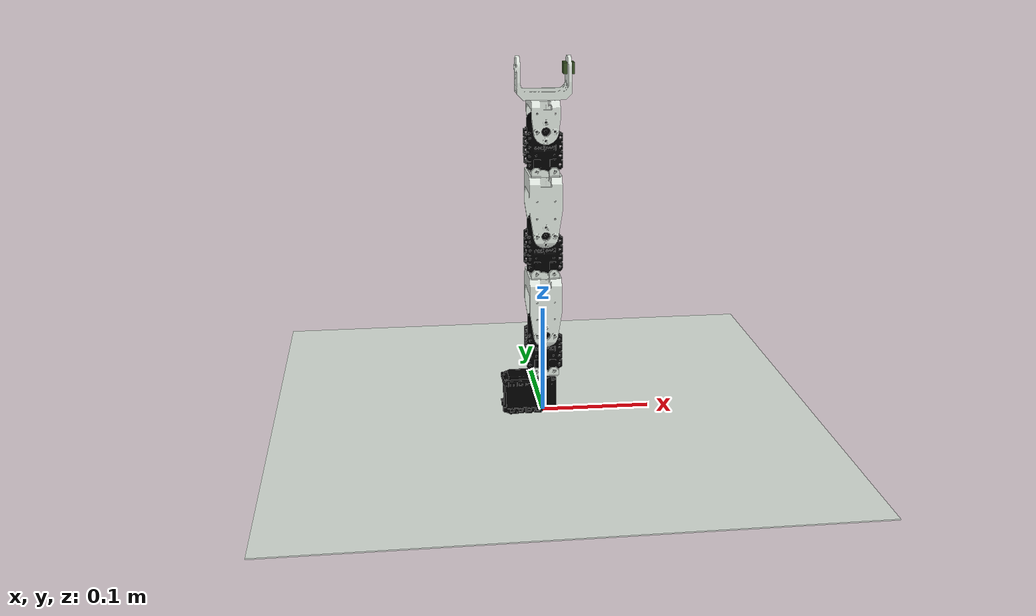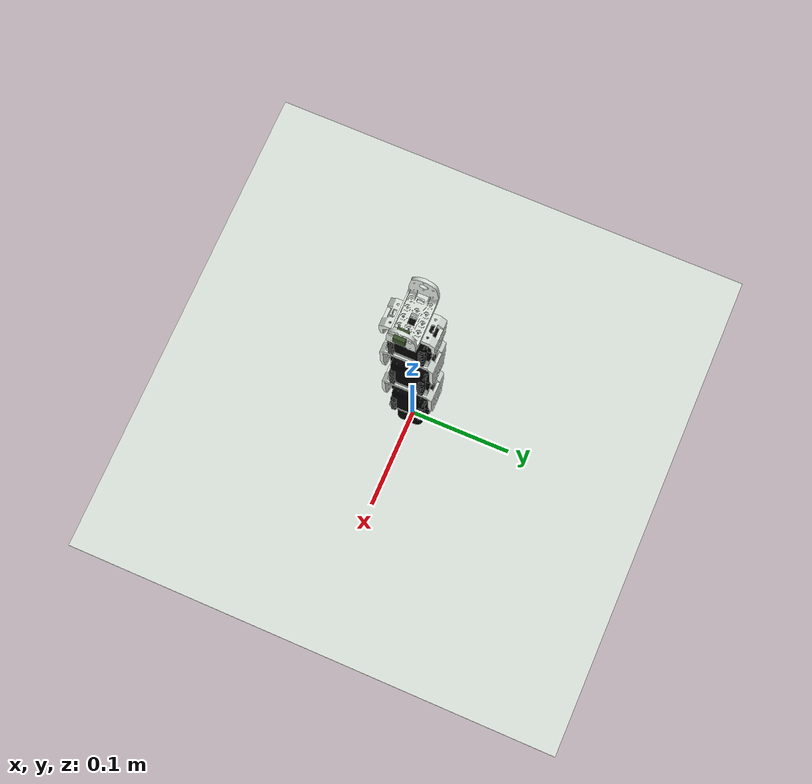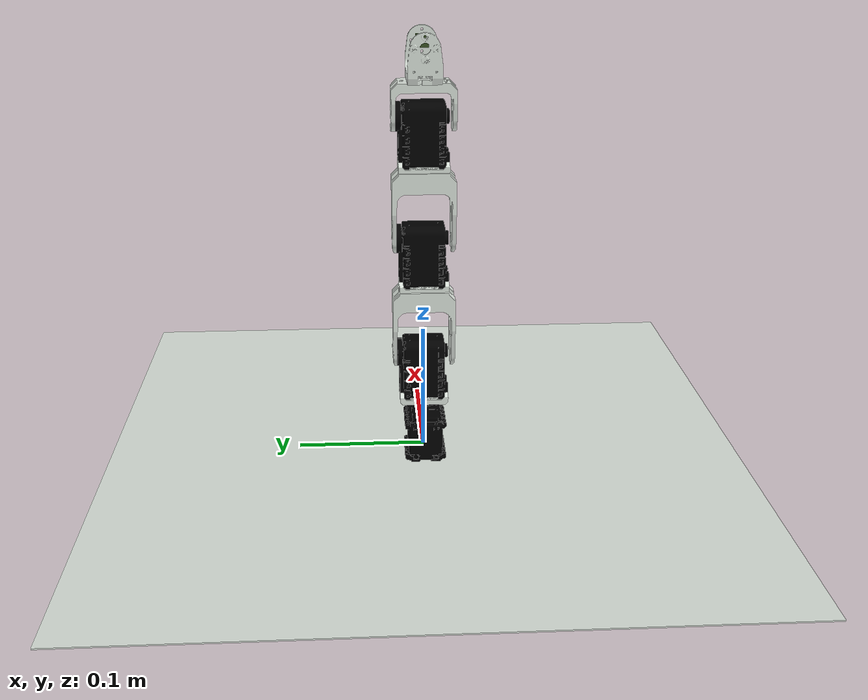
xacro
<?xml version="1.0"?>

<robot name="stackit_robot" xmlns:xacro="http://www.ros.org/wiki/xacro">
  <xacro:include filename="$(find stackit_robot_description)/urdf/arm_hardware.xacro" />

  <material name="white">
    <color rgba="0.87 0.90 0.87 1.0"/>
  </material>
  <material name="black">
    <color rgba="0.0 0.0 0.0 1.0"/>
  </material>
  <material name="green">
    <color rgba="0.22 0.32 0.14 1.0"/>
  </material>

  <link name="base_link"/>
  <link name="arm_base_link">
    <visual>
      <geometry>
        <box size ="0.5 0.5 0.001"/>
      </geometry>
      <material name="white"/>
    </visual>
  </link>
  <joint name="arm_base_joint" type="fixed">
    <origin xyz="0 0 0"/>
    <parent link="base_link"/>
    <child link="arm_base_link"/>
  </joint>

  <!-- shoulder pan joint -->
  <dynamixel_AX12_fixed parent="arm_base_link" name="base_pan_servo">
    <origin xyz="0 0 ${AX12_WIDTH/2}" rpy="0 0 ${-M_PI/2}"/>
  </dynamixel_AX12_fixed>
  <bioloid_F3_revolute parent="base_pan_servo_link" name="base_pan" color="white" vlimit="1.571"  llimit="-1.571" ulimit="1.571">
    <origin xyz="0 0 ${AX12_WIDTH/2+0.002}" rpy="${M_PI/2} 0 ${M_PI/2}" />
  </bioloid_F3_revolute>

  <!-- shoulder lift joint -->
  <dynamixel_AX12_fixed parent="base_pan_link" name="base_lift_servo">
    <origin xyz="0 ${AX12_HEIGHT+F3_HEIGHT} 0" rpy="0 ${M_PI} 0" />
  </dynamixel_AX12_fixed>
  <bioloid_F4_revolute parent="base_lift_servo_link" name="base_lift" color="white" vlimit="1.571" llimit="-2.617" ulimit="2.617">
    <origin xyz="0 0 0" rpy="${-M_PI/2} ${-M_PI/2} 0" />
  </bioloid_F4_revolute>

  <bioloid_F3_fixed parent="base_lift_link" name="arm_shoulder_F3_0" color="white">
    <origin xyz="0 0 ${F4_HEIGHT}" rpy="${M_PI/2} 0 ${-M_PI/2}" />
  </bioloid_F3_fixed>

  <!-- elbow joint -->
  <dynamixel_AX12_fixed parent="arm_shoulder_F3_0_link" name="elbow_flex_servo">
    <origin xyz="0 ${AX12_HEIGHT+F3_HEIGHT} 0" rpy="0 ${M_PI} 0" />
  </dynamixel_AX12_fixed>
  <bioloid_F4_revolute parent="elbow_flex_servo_link" name="elbow_flex" color="white" vlimit="1.571" llimit="0.0" ulimit="2.617">
    <origin xyz="0 0 0" rpy="${-M_PI/2} ${-M_PI/2} 0" />
  </bioloid_F4_revolute>

  <bioloid_F3_fixed parent="elbow_flex_link" name="elbow_F3_0" color="white">
    <origin xyz="0 0 ${F4_HEIGHT}" rpy="${M_PI/2} 0 ${-M_PI/2}" />
  </bioloid_F3_fixed>

  <!-- wrist joint -->
  <dynamixel_AX12_fixed parent="elbow_F3_0_link" name="wrist_flex_servo">
    <origin xyz="0 ${AX12_HEIGHT+F3_HEIGHT} 0" rpy="0 ${M_PI} 0" />
  </dynamixel_AX12_fixed>
  <bioloid_F2_revolute parent="wrist_flex_servo_link" name="wrist_flex" color="white" vlimit="1.571" llimit="-1.745" ulimit="1.745">
    <origin xyz="0 0 0" rpy="${-M_PI/2} ${-M_PI/2} 0" />
  </bioloid_F2_revolute>

  <bioloid_F2_fixed parent="wrist_flex_link" name="wrist_F2_0" color="white">
    <origin xyz="0 0 ${F2_HEIGHT*2}" rpy="0 ${M_PI} ${M_PI/2}" />
  </bioloid_F2_fixed>

  <!-- dummy joint -->
  <link name="dummy_a_link" />
  <joint name="dummy_a_joint" type="revolute">
    <parent link="wrist_F2_0_link"/>
    <child link="dummy_a_link"/>
    <origin xyz="0.0225 0 0" rpy="${M_PI} 0 0" />
    <axis xyz="1 0 0" />
    <limit effort="30" lower="-1.571" upper="1.571" velocity="1.571"/>
  </joint>

  <link name="dummy_b_link" >
    <visual>
      <geometry>
        <box size ="0.01 0.01 0.01"/>
      </geometry>
      <material name="green"/>
    </visual>
  </link>
  <joint name="dummy_b_joint" type="fixed">
    <parent link="dummy_a_link"/>
    <child link="dummy_b_link"/>
    <origin xyz="0 0 0" rpy="0 0 0" />
    <axis xyz="0 0 0" />
  </joint>

</robot>

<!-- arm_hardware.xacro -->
<robot xmlns:xacro="http://www.ros.org/wiki/xacro">
  <xacro:property name="M_PI" value="3.14159"/>
  <xacro:property name="M_SCALE" value="0.001"/>
  <xacro:property name="F2_HEIGHT" value="0.026"/>
  <xacro:property name="F3_HEIGHT" value="0.003"/>
  <xacro:property name="F4_HEIGHT" value="0.052"/>
  <xacro:property name="AX12_HEIGHT" value="0.0385"/>
  <xacro:property name="AX12_WIDTH" value="0.038"/>

  <xacro:macro name="bioloid_F2_fixed" params="parent name color *origin">
    <joint name="${name}_joint" type="fixed">
      <xacro:insert_block name="origin" />
      <parent link="${parent}"/>
      <child link="${name}_link" />
    </joint>

    <link name="${name}_link">
      <visual>
        <origin xyz=" 0 0 0 " rpy="0 0 0" />
        <geometry>
          <mesh filename="package://stackit_robot_description/meshes/FP04-F2.stl" scale="${M_SCALE} ${M_SCALE} ${M_SCALE}"/>
        </geometry>
        <material name="${color}"/>
      </visual>
      <collision>
        <origin xyz="0.0 0.0 0.00775" rpy="0 0 0" />
        <geometry>
          <box size="0.0485 0.025 0.0375"/>
        </geometry>
      </collision>
    </link>
  </xacro:macro>

  <xacro:macro name="bioloid_F3_fixed" params="parent name color *origin">
    <joint name="${name}_joint" type="fixed">
      <xacro:insert_block name="origin" />
      <parent link="${parent}"/>
      <child link="${name}_link" />
    </joint>

    <link name="${name}_link">
      <visual>
        <origin xyz=" 0 0 0 " rpy="0 0 0" />
        <geometry>
          <mesh filename="package://stackit_robot_description/meshes/FP04-F3.stl" scale="${M_SCALE} ${M_SCALE} ${M_SCALE}"/>
        </geometry>
        <material name="${color}"/>
      </visual>
      <collision>
        <origin xyz="0.0 0.0045 0" rpy="0 0 0" />
        <geometry>
          <box size="0.025 0.009 0.0382"/>
        </geometry>
      </collision>
    </link>
  </xacro:macro>

  <xacro:macro name="dynamixel_AX12_fixed" params="parent name *origin">
    <joint name="${name}_joint" type="fixed">
      <xacro:insert_block name="origin" />
      <parent link="${parent}"/>
      <child link="${name}_link" />
    </joint>

    <link name="${name}_link">
      <visual>
        <origin xyz=" 0 0 0 " rpy="0 0 0" />
        <geometry>
          <mesh filename="package://stackit_robot_description/meshes/AX-12A.stl" scale="${M_SCALE} ${M_SCALE} ${M_SCALE}"/>
        </geometry>
        <material name="black"/>
      </visual>
      <collision>
        <origin xyz="0.0 -0.0135 0.0" rpy="0 0 0" />
        <geometry>
          <box size="0.032 0.05 0.038"/>
        </geometry>
      </collision>
    </link>
  </xacro:macro>

  <xacro:macro name="bioloid_F3_revolute" params="parent name color llimit ulimit vlimit *origin">
    <joint name="${name}_joint" type="revolute">
      <xacro:insert_block name="origin" />
      <axis xyz="0 1 0"/>
      <limit effort="30" velocity="${vlimit}" lower="${llimit}" upper="${ulimit}" />
      <parent link="${parent}"/>
      <child link="${name}_link" />
    </joint>

    <link name="${name}_link">
      <visual>
        <origin xyz=" 0 0 0 " rpy="0 0 0" />
        <geometry>
          <mesh filename="package://stackit_robot_description/meshes/FP04-F3.stl" scale="${M_SCALE} ${M_SCALE} ${M_SCALE}"/>
        </geometry>
        <material name="${color}"/>
      </visual>
      <collision>
        <origin xyz="0.0 0.0045 0" rpy="0 0 0" />
        <geometry>
          <box size="0.025 0.009 0.0382"/>
        </geometry>
      </collision>
    </link>
  </xacro:macro>

  <xacro:macro name="bioloid_F2_revolute" params="parent name color llimit ulimit vlimit *origin">
    <joint name="${name}_joint" type="revolute">
      <xacro:insert_block name="origin" />
      <axis xyz="1 0 0"/>
      <limit effort="30" velocity="${vlimit}" lower="${llimit}" upper="${ulimit}" />
      <parent link="${parent}"/>
      <child link="${name}_link" />
    </joint>

    <link name="${name}_link">
      <visual>
        <origin xyz=" 0 0 0 " rpy="0 0 0" />
        <geometry>
          <mesh filename="package://stackit_robot_description/meshes/FP04-F2.stl" scale="${M_SCALE} ${M_SCALE} ${M_SCALE}"/>
        </geometry>
        <material name="${color}"/>
      </visual>
      <collision>
        <origin xyz="0.0 0.0 0.00775" rpy="0 0 0" />
        <geometry>
          <box size="0.0485 0.025 0.0375"/>
        </geometry>
      </collision>
    </link>
  </xacro:macro>

  <xacro:macro name="bioloid_F4_revolute" params="parent name color llimit ulimit vlimit *origin">
    <joint name="${name}_joint" type="revolute">
      <xacro:insert_block name="origin" />
      <axis xyz="1 0 0"/>
      <limit effort="30" velocity="${vlimit}" lower="${llimit}" upper="${ulimit}" />
      <parent link="${parent}"/>
      <child link="${name}_link" />
    </joint>

    <link name="${name}_link">
      <visual>
        <origin xyz=" 0 0 0 " rpy="0 0 0" />
        <geometry>
          <mesh filename="package://stackit_robot_description/meshes/FP04-F4.stl" scale="${M_SCALE} ${M_SCALE} ${M_SCALE}"/>
        </geometry>
        <material name="${color}"/>
      </visual>
      <collision>
        <origin xyz="0.0 0.0 0.0205" rpy="0 0 0" />
        <geometry>
          <box size="0.048 0.029 0.063"/>
        </geometry>
      </collision>
    </link>
  </xacro:macro>

</robot>
